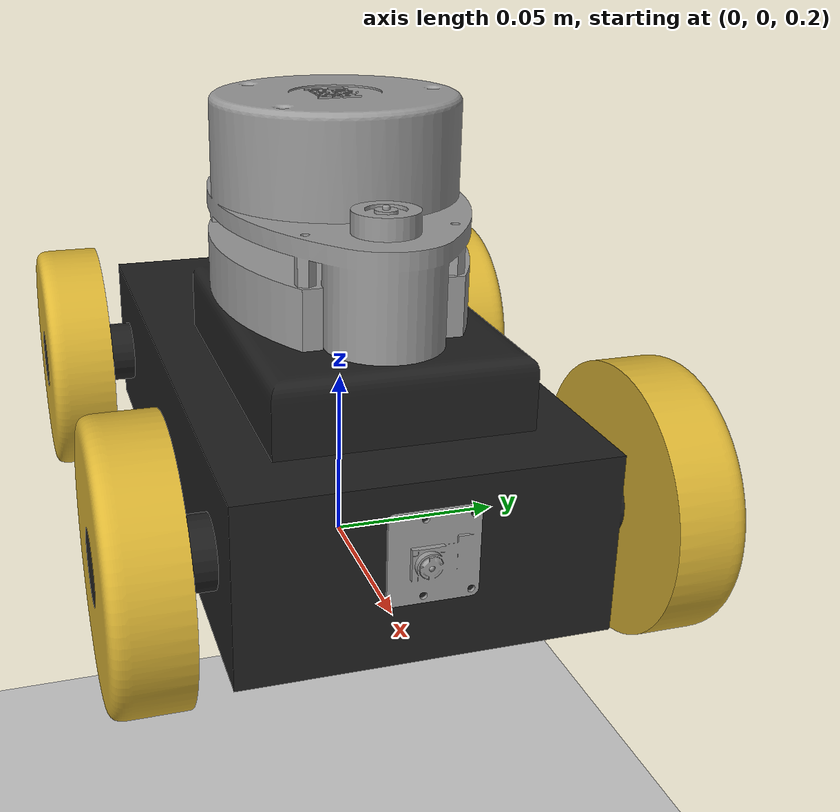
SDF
<sdf version="1.6">
 <world name="default">
  <light name="sun" type="directional">
   <pose>0 0 10 0 -0 0</pose>
   <diffuse>0.8 0.8 0.8 1</diffuse>
   <specular>0.2 0.2 0.2 1</specular>
   <attenuation>
    <range>1000</range>
    <constant>0.9</constant>
    <linear>0.01</linear>
    <quadratic>0.001</quadratic>
   </attenuation>
   <direction>-0.5 0.1 -0.9</direction>
  </light>
  <model name="ground_plane">
   <static>1</static>
   <link name="link">
    <collision name="collision">
     <geometry><plane><normal>0 0 1</normal><size>100 100</size></plane></geometry>
     <surface>
      <contact><collide_bitmask>65535</collide_bitmask></contact>
      <friction><ode><mu>100</mu><mu2>50</mu2></ode></friction>
     </surface>
    </collision>
    <visual name="visual">
     <cast_shadows>0</cast_shadows>
     <geometry><plane><normal>0 0 1</normal><size>100 100</size></plane></geometry>
     <material>
      <script><uri>file://media/materials/scripts/gazebo.material</uri><name>Gazebo/Grey</name></script>
     </material>
    </visual>
   </link>
  </model>
  <gravity>0 0 -9.8</gravity>
  <magnetic_field>6e-06 2.3e-05 -4.2e-05</magnetic_field>
  <atmosphere type="adiabatic"/>
  <physics name="default_physics" default="0" type="ode">
   <max_step_size>0.001</max_step_size>
   <real_time_factor>1</real_time_factor>
   <real_time_update_rate>1000</real_time_update_rate>
  </physics>
  <scene><ambient>0.4 0.4 0.4 1</ambient><background>0.7 0.7 0.7 1</background><shadows>1</shadows></scene>
  <spherical_coordinates>
   <surface_model>EARTH_WGS84</surface_model>
   <latitude_deg>0</latitude_deg>
   <longitude_deg>0</longitude_deg>
   <elevation>0</elevation>
   <heading_deg>0</heading_deg>
  </spherical_coordinates>
  <model name="ugv2">
   <link name="base_link">
    <inertial>
     <pose>0.006211 1.8e-05 0.053481 0 -0 0</pose>
     <mass>11.1736</mass>
     <inertia>
      <ixx>0.0195333</ixx>
      <ixy>-1.46318e-06</ixy>
      <ixz>-0.00258442</ixz>
      <iyy>0.0417909</iyy>
      <iyz>-7.30285e-06</iyz>
      <izz>0.0399416</izz>
     </inertia>
    </inertial>
    <collision name="base_link_collision">
     <geometry>
      <mesh>
       <scale>0.001 0.001 0.001</scale>
       <uri>/home/azeem/fsm_ws/src/fsm_project/ugv2_description/meshes/base_link.stl</uri>
      </mesh>
     </geometry>
     <surface><friction><ode><mu>1</mu><mu2>1</mu2></ode></friction></surface>
    </collision>
    <collision name="base_link_fixed_joint_lump__imu_sensor_1_collision_1">
     <geometry>
      <mesh>
       <scale>0.001 0.001 0.001</scale>
       <uri>/home/azeem/fsm_ws/src/fsm_project/ugv2_description/meshes/imu_sensor_1.stl</uri>
      </mesh>
     </geometry>
     <surface><friction><ode><mu>1</mu><mu2>1</mu2></ode></friction></surface>
    </collision>
    <collision name="base_link_fixed_joint_lump__lidar_1_collision_2">
     <geometry>
      <mesh>
       <scale>0.001 0.001 0.001</scale>
       <uri>/home/azeem/fsm_ws/src/fsm_project/ugv2_description/meshes/lidar_1.stl</uri>
      </mesh>
     </geometry>
     <surface><friction><ode><mu>1</mu><mu2>1</mu2></ode></friction></surface>
    </collision>
    <collision name="base_link_fixed_joint_lump__pi_camera_1_collision_3">
     <geometry>
      <mesh>
       <scale>0.001 0.001 0.001</scale>
       <uri>/home/azeem/fsm_ws/src/fsm_project/ugv2_description/meshes/pi_camera_1.stl</uri>
      </mesh>
     </geometry>
     <surface><friction><ode><mu>1</mu><mu2>1</mu2></ode></friction></surface>
    </collision>
    <visual name="base_link_visual">
     <geometry>
      <mesh>
       <scale>0.001 0.001 0.001</scale>
       <uri>/home/azeem/fsm_ws/src/fsm_project/ugv2_description/meshes/base_link.stl</uri>
      </mesh>
     </geometry>
     <material>
      <script><name>Gazebo/FlatBlack</name><uri>file://media/materials/scripts/gazebo.material</uri></script>
     </material>
    </visual>
    <visual name="base_link_fixed_joint_lump__imu_sensor_1_visual_1">
     <geometry>
      <mesh>
       <scale>0.001 0.001 0.001</scale>
       <uri>/home/azeem/fsm_ws/src/fsm_project/ugv2_description/meshes/imu_sensor_1.stl</uri>
      </mesh>
     </geometry>
     <material>
      <script><name>Gazebo/Grey</name><uri>file://media/materials/scripts/gazebo.material</uri></script>
     </material>
    </visual>
    <visual name="base_link_fixed_joint_lump__lidar_1_visual_2">
     <geometry>
      <mesh>
       <scale>0.001 0.001 0.001</scale>
       <uri>/home/azeem/fsm_ws/src/fsm_project/ugv2_description/meshes/lidar_1.stl</uri>
      </mesh>
     </geometry>
     <material>
      <script><name>Gazebo/Grey</name><uri>file://media/materials/scripts/gazebo.material</uri></script>
     </material>
    </visual>
    <visual name="base_link_fixed_joint_lump__pi_camera_1_visual_3">
     <geometry>
      <mesh>
       <scale>0.001 0.001 0.001</scale>
       <uri>/home/azeem/fsm_ws/src/fsm_project/ugv2_description/meshes/pi_camera_1.stl</uri>
      </mesh>
     </geometry>
     <material>
      <script><name>Gazebo/Grey</name><uri>file://media/materials/scripts/gazebo.material</uri></script>
     </material>
    </visual>
    <sensor name="head_hokuyo_sensor" type="gpu_ray">
     <visualize>1</visualize>
     <update_rate>40</update_rate>
     <ray>
      <scan>
       <horizontal>
        <samples>720</samples>
        <resolution>1</resolution>
        <min_angle>-3.14159</min_angle>
        <max_angle>3.14159</max_angle>
       </horizontal>
       <vertical><samples>1</samples><min_angle>0</min_angle><max_angle>0</max_angle></vertical>
      </scan>
      <range><min>0.1</min><max>30</max><resolution>0.01</resolution></range>
      <noise><type>gaussian</type><mean>0</mean><stddev>0.01</stddev></noise>
     </ray>
     <plugin name="gazebo_ros_head_hokuyo_controller" filename="libgazebo_ros_gpu_laser.so">
      <topicName>/scan</topicName>
      <frameName>lidar_1</frameName>
      <robotNamespace>/</robotNamespace>
     </plugin>
     <pose>0.0275 0 0.08275 0 -0 0</pose>
    </sensor>
    <self_collide>1</self_collide>
   </link>
   <link name="lb_wheel_1">
    <pose>-0.075 0.08 0.03775 0 -0 0</pose>
    <inertial>
     <pose>0 -0.010079 -0 0 -0 0</pose>
     <mass>0.638718</mass>
     <inertia>
      <ixx>0.00026</ixx>
      <ixy>0</ixy>
      <ixz>-0</ixz>
      <iyy>0.000478</iyy>
      <iyz>-0</iyz>
      <izz>0.00026</izz>
     </inertia>
    </inertial>
    <collision name="lb_wheel_1_collision">
     <pose>0.075 -0.08 -0.03775 0 -0 0</pose>
     <geometry>
      <mesh>
       <scale>0.001 0.001 0.001</scale>
       <uri>/home/azeem/fsm_ws/src/fsm_project/ugv2_description/meshes/lb_wheel_1.stl</uri>
      </mesh>
     </geometry>
     <surface><friction><ode><mu>100</mu><mu2>100</mu2></ode></friction></surface>
    </collision>
    <visual name="lb_wheel_1_visual">
     <pose>0.075 -0.08 -0.03775 0 -0 0</pose>
     <geometry>
      <mesh>
       <scale>0.001 0.001 0.001</scale>
       <uri>/home/azeem/fsm_ws/src/fsm_project/ugv2_description/meshes/lb_wheel_1.stl</uri>
      </mesh>
     </geometry>
     <material>
      <script><name>Gazebo/Gold</name><uri>file://media/materials/scripts/gazebo.material</uri></script>
     </material>
    </visual>
    <self_collide>1</self_collide>
   </link>
   <joint name="lb_joint" type="revolute">
    <child>lb_wheel_1</child>
    <parent>base_link</parent>
    <axis>
     <xyz>0 1 0</xyz>
     <limit><lower>-1e+16</lower><upper>1e+16</upper></limit>
     <dynamics><spring_reference>0</spring_reference><spring_stiffness>0</spring_stiffness></dynamics>
     <use_parent_model_frame>0</use_parent_model_frame>
    </axis>
   </joint>
   <link name="lf_wheel_1">
    <pose>0.075 0.08 0.03775 0 -0 0</pose>
    <inertial>
     <pose>-0 -0.010079 -0 0 -0 0</pose>
     <mass>0.638718</mass>
     <inertia>
      <ixx>0.00026</ixx>
      <ixy>-0</ixy>
      <ixz>0</ixz>
      <iyy>0.000478</iyy>
      <iyz>0</iyz>
      <izz>0.00026</izz>
     </inertia>
    </inertial>
    <collision name="lf_wheel_1_collision">
     <pose>-0.075 -0.08 -0.03775 0 -0 0</pose>
     <geometry>
      <mesh>
       <scale>0.001 0.001 0.001</scale>
       <uri>/home/azeem/fsm_ws/src/fsm_project/ugv2_description/meshes/lf_wheel_1.stl</uri>
      </mesh>
     </geometry>
     <surface><friction><ode><mu>100</mu><mu2>100</mu2></ode></friction></surface>
    </collision>
    <visual name="lf_wheel_1_visual">
     <pose>-0.075 -0.08 -0.03775 0 -0 0</pose>
     <geometry>
      <mesh>
       <scale>0.001 0.001 0.001</scale>
       <uri>/home/azeem/fsm_ws/src/fsm_project/ugv2_description/meshes/lf_wheel_1.stl</uri>
      </mesh>
     </geometry>
     <material>
      <script><name>Gazebo/Gold</name><uri>file://media/materials/scripts/gazebo.material</uri></script>
     </material>
    </visual>
    <self_collide>1</self_collide>
   </link>
   <joint name="lf_joint" type="revolute">
    <child>lf_wheel_1</child>
    <parent>base_link</parent>
    <axis>
     <xyz>0 1 0</xyz>
     <limit><lower>-1e+16</lower><upper>1e+16</upper></limit>
     <dynamics><spring_reference>0</spring_reference><spring_stiffness>0</spring_stiffness></dynamics>
     <use_parent_model_frame>0</use_parent_model_frame>
    </axis>
   </joint>
   <link name="rb_wheel_1">
    <pose>-0.075 -0.08 0.03775 0 -0 0</pose>
    <inertial>
     <pose>-0 0.010079 0 0 -0 0</pose>
     <mass>0.638718</mass>
     <inertia>
      <ixx>0.00026</ixx>
      <ixy>-0</ixy>
      <ixz>-0</ixz>
      <iyy>0.000478</iyy>
      <iyz>0</iyz>
      <izz>0.00026</izz>
     </inertia>
    </inertial>
    <collision name="rb_wheel_1_collision">
     <pose>0.075 0.08 -0.03775 0 -0 0</pose>
     <geometry>
      <mesh>
       <scale>0.001 0.001 0.001</scale>
       <uri>/home/azeem/fsm_ws/src/fsm_project/ugv2_description/meshes/rb_wheel_1.stl</uri>
      </mesh>
     </geometry>
     <surface><friction><ode><mu>100</mu><mu2>100</mu2></ode></friction></surface>
    </collision>
    <visual name="rb_wheel_1_visual">
     <pose>0.075 0.08 -0.03775 0 -0 0</pose>
     <geometry>
      <mesh>
       <scale>0.001 0.001 0.001</scale>
       <uri>/home/azeem/fsm_ws/src/fsm_project/ugv2_description/meshes/rb_wheel_1.stl</uri>
      </mesh>
     </geometry>
     <material>
      <script><name>Gazebo/Gold</name><uri>file://media/materials/scripts/gazebo.material</uri></script>
     </material>
    </visual>
    <self_collide>1</self_collide>
   </link>
   <joint name="rb_joint" type="revolute">
    <child>rb_wheel_1</child>
    <parent>base_link</parent>
    <axis>
     <xyz>0 1 0</xyz>
     <limit><lower>-1e+16</lower><upper>1e+16</upper></limit>
     <dynamics><spring_reference>0</spring_reference><spring_stiffness>0</spring_stiffness></dynamics>
     <use_parent_model_frame>0</use_parent_model_frame>
    </axis>
   </joint>
   <link name="rf_wheel_1">
    <pose>0.075 -0.08 0.03775 0 -0 0</pose>
    <inertial>
     <pose>0 0.010079 0 0 -0 0</pose>
     <mass>0.638718</mass>
     <inertia><ixx>0.00026</ixx><ixy>0</ixy><ixz>0</ixz><iyy>0.000478</iyy><iyz>0</iyz><izz>0.00026</izz></inertia>
    </inertial>
    <collision name="rf_wheel_1_collision">
     <pose>-0.075 0.08 -0.03775 0 -0 0</pose>
     <geometry>
      <mesh>
       <scale>0.001 0.001 0.001</scale>
       <uri>/home/azeem/fsm_ws/src/fsm_project/ugv2_description/meshes/rf_wheel_1.stl</uri>
      </mesh>
     </geometry>
     <surface><friction><ode><mu>100</mu><mu2>100</mu2></ode></friction></surface>
    </collision>
    <visual name="rf_wheel_1_visual">
     <pose>-0.075 0.08 -0.03775 0 -0 0</pose>
     <geometry>
      <mesh>
       <scale>0.001 0.001 0.001</scale>
       <uri>/home/azeem/fsm_ws/src/fsm_project/ugv2_description/meshes/rf_wheel_1.stl</uri>
      </mesh>
     </geometry>
     <material>
      <script><name>Gazebo/Gold</name><uri>file://media/materials/scripts/gazebo.material</uri></script>
     </material>
    </visual>
    <self_collide>1</self_collide>
   </link>
   <joint name="rf_joint" type="revolute">
    <child>rf_wheel_1</child>
    <parent>base_link</parent>
    <axis>
     <xyz>0 1 0</xyz>
     <limit><lower>-1e+16</lower><upper>1e+16</upper></limit>
     <dynamics><spring_reference>0</spring_reference><spring_stiffness>0</spring_stiffness></dynamics>
     <use_parent_model_frame>0</use_parent_model_frame>
    </axis>
   </joint>
   <plugin name="control" filename="libgazebo_ros_control.so"><robotNamespace>/</robotNamespace></plugin>
   <static>0</static>
   <plugin name="skid_steer_drive_controller" filename="libgazebo_ros_skid_steer_drive.so">
    <updateRate>100.0</updateRate>
    <robotNamespace>/</robotNamespace>
    <leftFrontJoint>lf_joint</leftFrontJoint>
    <rightFrontJoint>rf_joint</rightFrontJoint>
    <leftRearJoint>lb_joint</leftRearJoint>
    <rightRearJoint>rb_joint</rightRearJoint>
    <wheelSeparation>0.12</wheelSeparation>
    <wheelDiameter>0.075</wheelDiameter>
    <robotBaseFrame>base_link</robotBaseFrame>
    <torque>20</torque>
    <commandTopic>cmd_vel</commandTopic>
    <broadcastTF>1</broadcastTF>
    <odometryTopic>odom</odometryTopic>
    <odometryFrame>odom</odometryFrame>
    <odometrySource>1</odometrySource>
    <publishWheelTF>1</publishWheelTF>
    <publishOdom>1</publishOdom>
    <publishWheelJointState>1</publishWheelJointState>
   </plugin>
   <pose>-0.024263 0.001311 0.189541 -3.6e-05 9e-06 -0.001455</pose>
  </model>
 </world>
</sdf>
